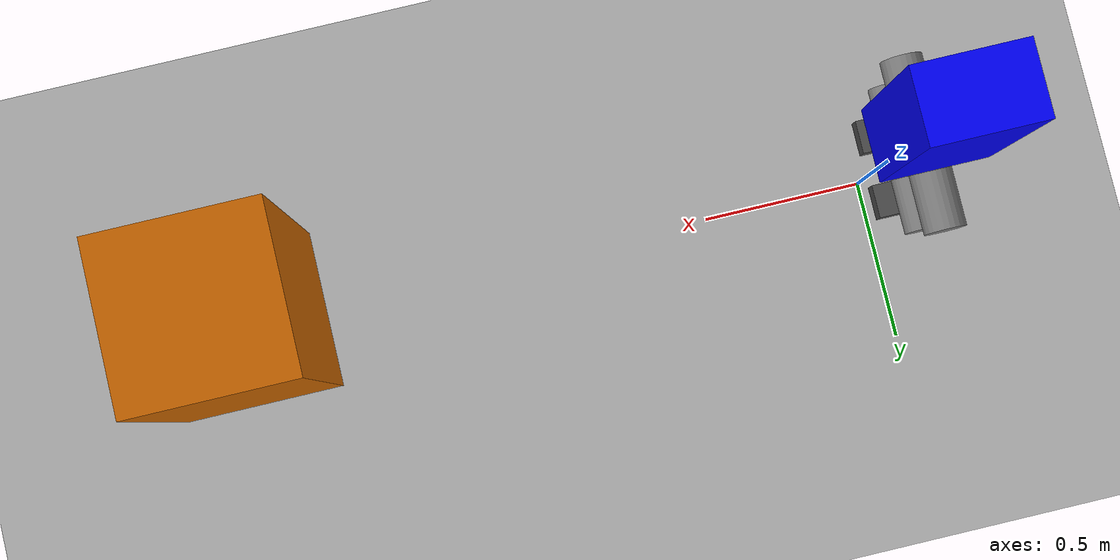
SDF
<?xml version="1.0" ?>
<sdf version="1.7">
  <world name="humanoid_simple_world">
    <!-- Physics configuration -->
    <physics name="default_physics" type="ode">
      <max_step_size>0.001</max_step_size>
      <real_time_factor>1.0</real_time_factor>
      <real_time_update_rate>1000.0</real_time_update_rate>
      <gravity>0 0 -9.8</gravity>
      <ode>
        <solver>
          <type>quick</type>
          <iters>100</iters>
          <sor>1.3</sor>
        </solver>
        <constraints>
          <cfm>0.000001</cfm>
          <erp>0.2</erp>
          <contact_max_correcting_vel>100.0</contact_max_correcting_vel>
          <contact_surface_layer>0.001</contact_surface_layer>
        </constraints>
      </ode>
    </physics>

    <!-- Lighting -->
    <light name="sun" type="directional">
      <cast_shadows>true</cast_shadows>
      <pose>0 0 10 0 0 0</pose>
      <diffuse>0.8 0.8 0.8 1</diffuse>
      <specular>0.2 0.2 0.2 1</specular>
      <attenuation>
        <range>1000</range>
        <constant>0.9</constant>
        <linear>0.01</linear>
        <quadratic>0.001</quadratic>
      </attenuation>
      <direction>-0.4 0.2 -1</direction>
    </light>

    <!-- Ground plane -->
    <model name="ground_plane">
      <static>true</static>
      <link name="link">
        <collision name="collision">
          <geometry>
            <plane>
              <normal>0 0 1</normal>
              <size>100 100</size>
            </plane>
          </geometry>
          <surface>
            <friction>
              <ode>
                <mu>0.8</mu>
                <mu2>0.8</mu2>
              </ode>
            </friction>
          </surface>
        </collision>
        <visual name="visual">
          <geometry>
            <plane>
              <normal>0 0 1</normal>
              <size>100 100</size>
            </plane>
          </geometry>
          <material>
            <ambient>0.7 0.7 0.7 1</ambient>
            <diffuse>0.7 0.7 0.7 1</diffuse>
            <specular>0.0 0.0 0.0 1</specular>
          </material>
        </visual>
      </link>
    </model>

    <!-- Simple humanoid robot -->
    <model name="simple_humanoid">
      <pose>0 0 1 0 0 0</pose>

      <!-- Base/torso link -->
      <link name="base_link">
        <pose>0 0 0.3 0 0 0</pose>
        <inertial>
          <mass>10.0</mass>
          <inertia>
            <ixx>0.5</ixx>
            <ixy>0.0</ixy>
            <ixz>0.0</ixz>
            <iyy>0.5</iyy>
            <iyz>0.0</iyz>
            <izz>0.3</izz>
          </inertia>
        </inertial>
        <visual name="visual">
          <geometry>
            <box>
              <size>0.3 0.2 0.6</size>
            </box>
          </geometry>
          <material>
            <ambient>0 0 1 1</ambient>
            <diffuse>0 0 1 1</diffuse>
          </material>
        </visual>
        <collision name="collision">
          <geometry>
            <box>
              <size>0.3 0.2 0.6</size>
            </box>
          </geometry>
        </collision>
      </link>

      <!-- Head -->
      <link name="head">
        <pose>0 0 0.4 0 0 0</pose>
        <inertial>
          <mass>2.0</mass>
          <inertia>
            <ixx>0.02</ixx>
            <ixy>0.0</ixy>
            <ixz>0.0</ixz>
            <iyy>0.02</iyy>
            <iyz>0.0</iyz>
            <izz>0.02</izz>
          </inertia>
        </inertial>
        <visual name="visual">
          <geometry>
            <sphere>
              <radius>0.1</radius>
            </sphere>
          </geometry>
          <material>
            <ambient>1 1 1 1</ambient>
            <diffuse>1 1 1 1</diffuse>
          </material>
        </visual>
        <collision name="collision">
          <geometry>
            <sphere>
              <radius>0.1</radius>
            </sphere>
          </geometry>
        </collision>
      </link>

      <joint name="neck_joint" type="revolute">
        <parent>base_link</parent>
        <child>head</child>
        <axis>
          <xyz>0 1 0</xyz>
          <limit>
            <lower>-0.5</lower>
            <upper>0.5</upper>
            <effort>10.0</effort>
            <velocity>2.0</velocity>
          </limit>
        </axis>
        <pose>0 0 0.3 0 0 0</pose>
      </joint>

      <!-- Left leg -->
      <link name="left_thigh">
        <pose>-0.05 -0.1 -0.1 0 0 0</pose>
        <inertial>
          <mass>3.0</mass>
          <inertia>
            <ixx>0.08</ixx>
            <ixy>0.0</ixy>
            <ixz>0.01</ixz>
            <iyy>0.08</iyy>
            <iyz>0.0</iyz>
            <izz>0.01</izz>
          </inertia>
        </inertial>
        <visual name="visual">
          <geometry>
            <cylinder>
              <length>0.3</length>
              <radius>0.06</radius>
            </cylinder>
          </geometry>
          <pose>0 0 -0.15 1.5708 0 0</pose>
          <material>
            <ambient>0.5 0.5 0.5 1</ambient>
            <diffuse>0.5 0.5 0.5 1</diffuse>
          </material>
        </visual>
        <collision name="collision">
          <geometry>
            <cylinder>
              <length>0.3</length>
              <radius>0.06</radius>
            </cylinder>
          </geometry>
          <pose>0 0 -0.15 1.5708 0 0</pose>
        </collision>
      </link>

      <joint name="left_hip_joint" type="revolute">
        <parent>base_link</parent>
        <child>left_thigh</child>
        <axis>
          <xyz>0 1 0</xyz>
          <limit>
            <lower>-1.0</lower>
            <upper>0.5</upper>
            <effort>50.0</effort>
            <velocity>5.0</velocity>
          </limit>
        </axis>
        <pose>-0.05 -0.1 0 0 0 0</pose>
      </joint>

      <link name="left_shin">
        <pose>-0.05 -0.1 -0.4 0 0 0</pose>
        <inertial>
          <mass>2.0</mass>
          <inertia>
            <ixx>0.04</ixx>
            <ixy>0.0</ixy>
            <ixz>0.005</ixz>
            <iyy>0.04</iyy>
            <iyz>0.0</iyz>
            <izz>0.008</izz>
          </inertia>
        </inertial>
        <visual name="visual">
          <geometry>
            <cylinder>
              <length>0.24</length>
              <radius>0.05</radius>
            </cylinder>
          </geometry>
          <pose>0 0 -0.12 1.5708 0 0</pose>
          <material>
            <ambient>0.5 0.5 0.5 1</ambient>
            <diffuse>0.5 0.5 0.5 1</diffuse>
          </material>
        </visual>
        <collision name="collision">
          <geometry>
            <cylinder>
              <length>0.24</length>
              <radius>0.05</radius>
            </cylinder>
          </geometry>
          <pose>0 0 -0.12 1.5708 0 0</pose>
        </collision>
      </link>

      <joint name="left_knee_joint" type="revolute">
        <parent>left_thigh</parent>
        <child>left_shin</child>
        <axis>
          <xyz>0 1 0</xyz>
          <limit>
            <lower>0.0</lower>
            <upper>2.0</upper>
            <effort>40.0</effort>
            <velocity>4.0</velocity>
          </limit>
        </axis>
        <pose>0 0 -0.3 0 0 0</pose>
      </joint>

      <link name="left_foot">
        <pose>-0.05 -0.1 -0.64 0 0 0</pose>
        <inertial>
          <mass>1.0</mass>
          <inertia>
            <ixx>0.01</ixx>
            <ixy>0.0</ixy>
            <ixz>0.001</ixz>
            <iyy>0.02</iyy>
            <iyz>0.0</iyz>
            <izz>0.015</izz>
          </inertia>
        </inertial>
        <visual name="visual">
          <geometry>
            <box>
              <size>0.18 0.1 0.06</size>
            </box>
          </geometry>
          <material>
            <ambient>0.3 0.3 0.3 1</ambient>
            <diffuse>0.3 0.3 0.3 1</diffuse>
          </material>
        </visual>
        <collision name="collision">
          <geometry>
            <box>
              <size>0.18 0.1 0.06</size>
            </box>
          </geometry>
        </collision>
      </link>

      <joint name="left_ankle_joint" type="revolute">
        <parent>left_shin</parent>
        <child>left_foot</child>
        <axis>
          <xyz>0 1 0</xyz>
          <limit>
            <lower>-0.5</lower>
            <upper>0.5</upper>
            <effort>20.0</effort>
            <velocity>3.0</velocity>
          </limit>
        </axis>
        <pose>0 0 -0.24 0 0 0</pose>
      </joint>

      <!-- Right leg (similar to left but mirrored) -->
      <link name="right_thigh">
        <pose>-0.05 0.1 -0.1 0 0 0</pose>
        <inertial>
          <mass>3.0</mass>
          <inertia>
            <ixx>0.08</ixx>
            <ixy>0.0</ixy>
            <ixz>0.01</ixz>
            <iyy>0.08</iyy>
            <iyz>0.0</iyz>
            <izz>0.01</izz>
          </inertia>
        </inertial>
        <visual name="visual">
          <geometry>
            <cylinder>
              <length>0.3</length>
              <radius>0.06</radius>
            </cylinder>
          </geometry>
          <pose>0 0 -0.15 1.5708 0 0</pose>
          <material>
            <ambient>0.5 0.5 0.5 1</ambient>
            <diffuse>0.5 0.5 0.5 1</diffuse>
          </material>
        </visual>
        <collision name="collision">
          <geometry>
            <cylinder>
              <length>0.3</length>
              <radius>0.06</radius>
            </cylinder>
          </geometry>
          <pose>0 0 -0.15 1.5708 0 0</pose>
        </collision>
      </link>

      <joint name="right_hip_joint" type="revolute">
        <parent>base_link</parent>
        <child>right_thigh</child>
        <axis>
          <xyz>0 1 0</xyz>
          <limit>
            <lower>-1.0</lower>
            <upper>0.5</upper>
            <effort>50.0</effort>
            <velocity>5.0</velocity>
          </limit>
        </axis>
        <pose>-0.05 0.1 0 0 0 0</pose>
      </joint>

      <link name="right_shin">
        <pose>-0.05 0.1 -0.4 0 0 0</pose>
        <inertial>
          <mass>2.0</mass>
          <inertia>
            <ixx>0.04</ixx>
            <ixy>0.0</ixy>
            <ixz>0.005</ixz>
            <iyy>0.04</iyy>
            <iyz>0.0</iyz>
            <izz>0.008</izz>
          </inertia>
        </inertial>
        <visual name="visual">
          <geometry>
            <cylinder>
              <length>0.24</length>
              <radius>0.05</radius>
            </cylinder>
          </geometry>
          <pose>0 0 -0.12 1.5708 0 0</pose>
          <material>
            <ambient>0.5 0.5 0.5 1</ambient>
            <diffuse>0.5 0.5 0.5 1</diffuse>
          </material>
        </visual>
        <collision name="collision">
          <geometry>
            <cylinder>
              <length>0.24</length>
              <radius>0.05</radius>
            </cylinder>
          </geometry>
          <pose>0 0 -0.12 1.5708 0 0</pose>
        </collision>
      </link>

      <joint name="right_knee_joint" type="revolute">
        <parent>right_thigh</parent>
        <child>right_shin</child>
        <axis>
          <xyz>0 1 0</xyz>
          <limit>
            <lower>0.0</lower>
            <upper>2.0</upper>
            <effort>40.0</effort>
            <velocity>4.0</velocity>
          </limit>
        </axis>
        <pose>0 0 -0.3 0 0 0</pose>
      </joint>

      <link name="right_foot">
        <pose>-0.05 0.1 -0.64 0 0 0</pose>
        <inertial>
          <mass>1.0</mass>
          <inertia>
            <ixx>0.01</ixx>
            <ixy>0.0</ixy>
            <ixz>0.001</ixz>
            <iyy>0.02</iyy>
            <iyz>0.0</iyz>
            <izz>0.015</izz>
          </inertia>
        </inertial>
        <visual name="visual">
          <geometry>
            <box>
              <size>0.18 0.1 0.06</size>
            </box>
          </geometry>
          <material>
            <ambient>0.3 0.3 0.3 1</ambient>
            <diffuse>0.3 0.3 0.3 1</diffuse>
          </material>
        </visual>
        <collision name="collision">
          <geometry>
            <box>
              <size>0.18 0.1 0.06</size>
            </box>
          </geometry>
        </collision>
      </link>

      <joint name="right_ankle_joint" type="revolute">
        <parent>right_shin</parent>
        <child>right_foot</child>
        <axis>
          <xyz>0 1 0</xyz>
          <limit>
            <lower>-0.5</lower>
            <upper>0.5</upper>
            <effort>20.0</effort>
            <velocity>3.0</velocity>
          </limit>
        </axis>
        <pose>0 0 -0.24 0 0 0</pose>
      </joint>
    </model>

    <!-- Additional objects for testing -->
    <model name="test_box">
      <pose>2 0 0.5 0 0 0</pose>
      <link name="link">
        <inertial>
          <mass>1.0</mass>
          <inertia>
            <ixx>0.083</ixx>
            <ixy>0</ixy>
            <ixz>0</ixz>
            <iyy>0.083</iyy>
            <iyz>0</iyz>
            <izz>0.083</izz>
          </inertia>
        </inertial>
        <visual name="visual">
          <geometry>
            <box>
              <size>0.5 0.5 1.0</size>
            </box>
          </geometry>
          <material>
            <ambient>0.8 0.4 0.0 1</ambient>
            <diffuse>0.8 0.4 0.0 1</diffuse>
          </material>
        </visual>
        <collision name="collision">
          <geometry>
            <box>
              <size>0.5 0.5 1.0</size>
            </box>
          </geometry>
        </collision>
      </link>
    </model>
  </world>
</sdf>
